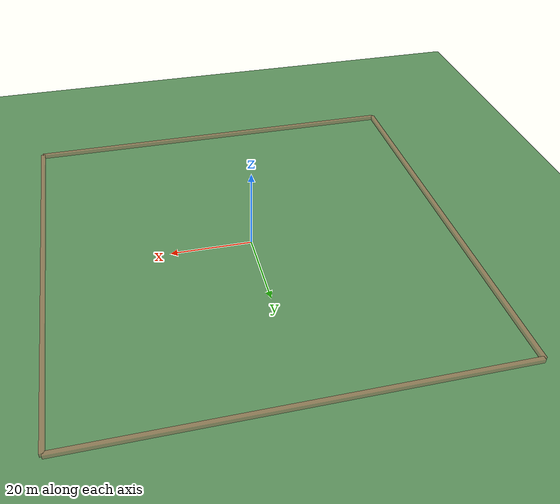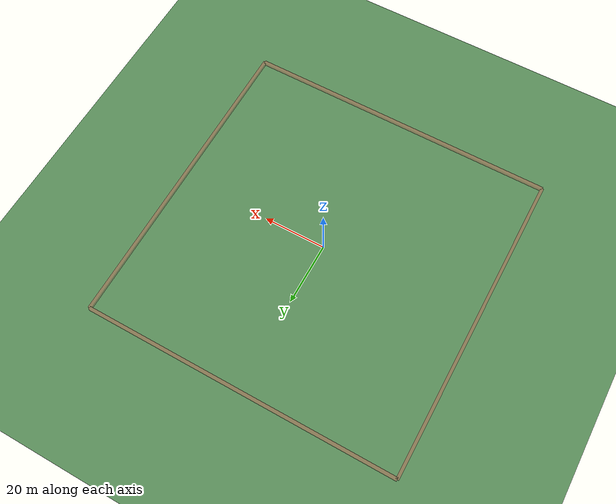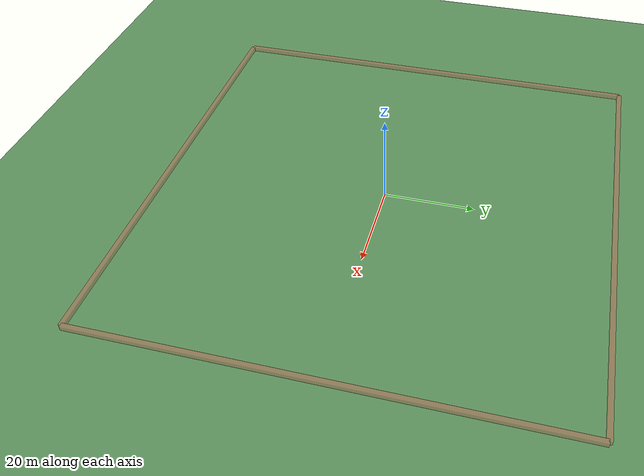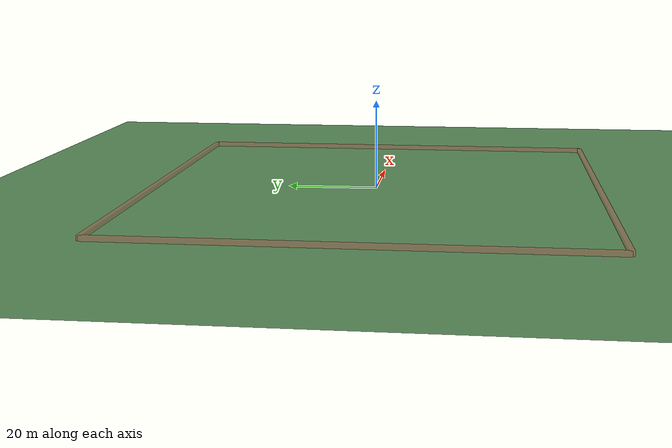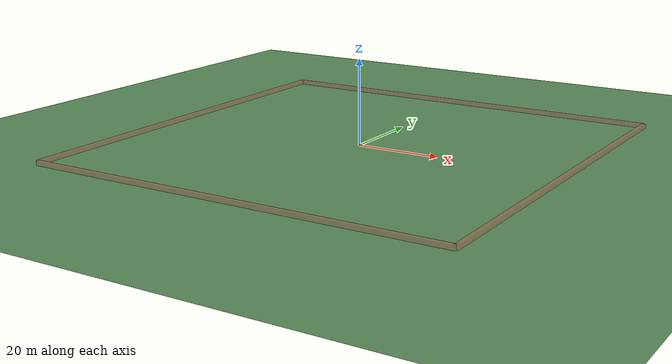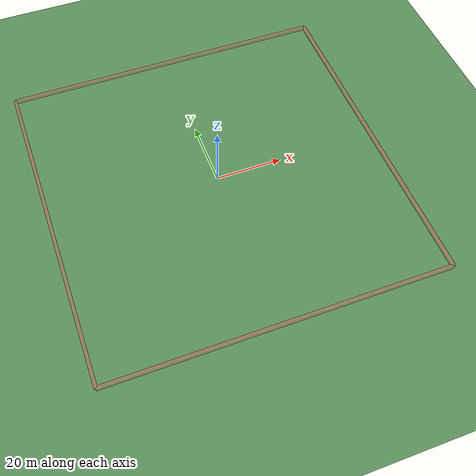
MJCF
<!--
  Swarm Drone Model for MuJoCo

  A simple quadrotor representation with:
  - Central body (sphere)
  - 4 rotor markers
  - Collision geometry

  Designed for swarm visualization (10-100 agents)
-->
<mujoco model="swarm_drone">
  <compiler angle="degree" coordinate="local"/>

  <option gravity="0 0 -9.81" timestep="0.02"/>

  <default>
    <geom contype="1" conaffinity="1" friction="1 0.1 0.1"/>
    <joint damping="0.5"/>
  </default>

  <asset>
    <!-- Drone body texture -->
    <texture name="drone_tex" type="2d" builtin="flat" rgb1="0.2 0.2 0.8" rgb2="0.1 0.1 0.4" width="32" height="32"/>
    <material name="drone_mat" texture="drone_tex" specular="0.5" shininess="0.5"/>

    <!-- Rotor texture -->
    <texture name="rotor_tex" type="2d" builtin="flat" rgb1="0.1 0.1 0.1" rgb2="0.3 0.3 0.3" width="16" height="16"/>
    <material name="rotor_mat" texture="rotor_tex"/>

    <!-- Ground texture -->
    <texture name="ground_tex" type="2d" builtin="checker" rgb1="0.4 0.6 0.4" rgb2="0.3 0.5 0.3" width="256" height="256"/>
    <material name="ground_mat" texture="ground_tex" texrepeat="20 20"/>

    <!-- Trail marker -->
    <material name="trail_mat" rgba="0.3 0.3 1.0 0.3"/>
  </asset>

  <worldbody>
    <!-- Ground plane -->
    <geom name="ground" type="plane" size="100 100 0.1" material="ground_mat" contype="0" conaffinity="0"/>

    <!-- Arena boundary markers -->
    <geom name="boundary_x_pos" type="box" pos="50 0 0.5" size="0.5 50 0.5" rgba="1 0.3 0.3 0.3" contype="0" conaffinity="0"/>
    <geom name="boundary_x_neg" type="box" pos="-50 0 0.5" size="0.5 50 0.5" rgba="1 0.3 0.3 0.3" contype="0" conaffinity="0"/>
    <geom name="boundary_y_pos" type="box" pos="0 50 0.5" size="50 0.5 0.5" rgba="1 0.3 0.3 0.3" contype="0" conaffinity="0"/>
    <geom name="boundary_y_neg" type="box" pos="0 -50 0.5" size="50 0.5 0.5" rgba="1 0.3 0.3 0.3" contype="0" conaffinity="0"/>

    <!-- Light -->
    <light name="main_light" pos="0 0 100" dir="0 0 -1" diffuse="1 1 1" specular="0.3 0.3 0.3" castshadow="true"/>
  </worldbody>
</mujoco>
